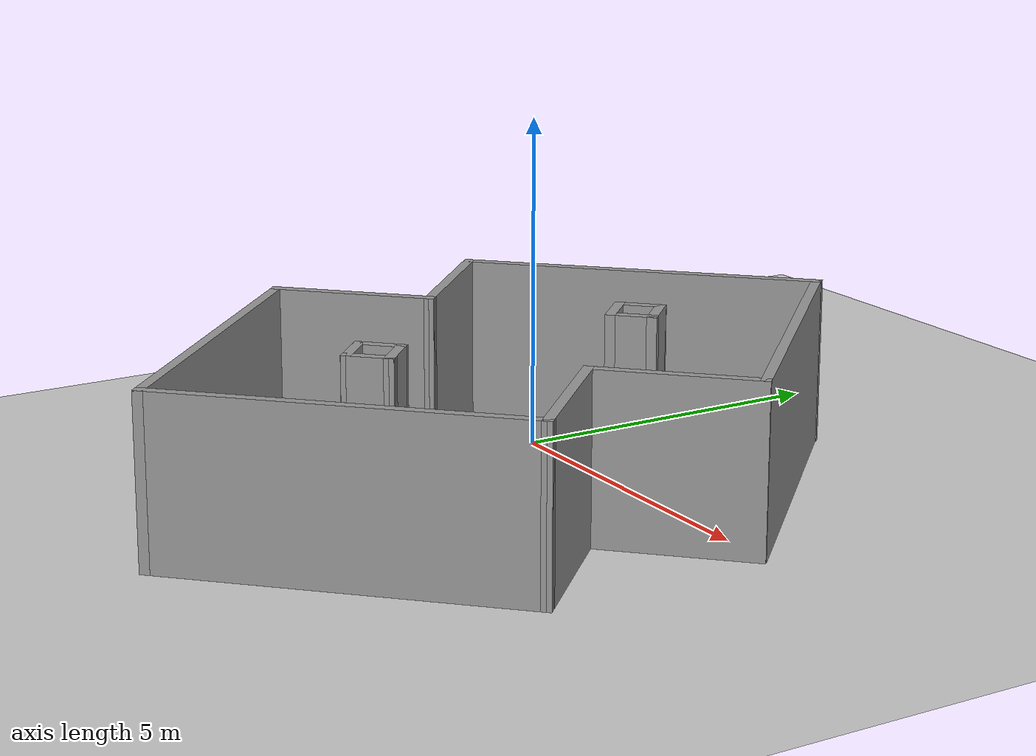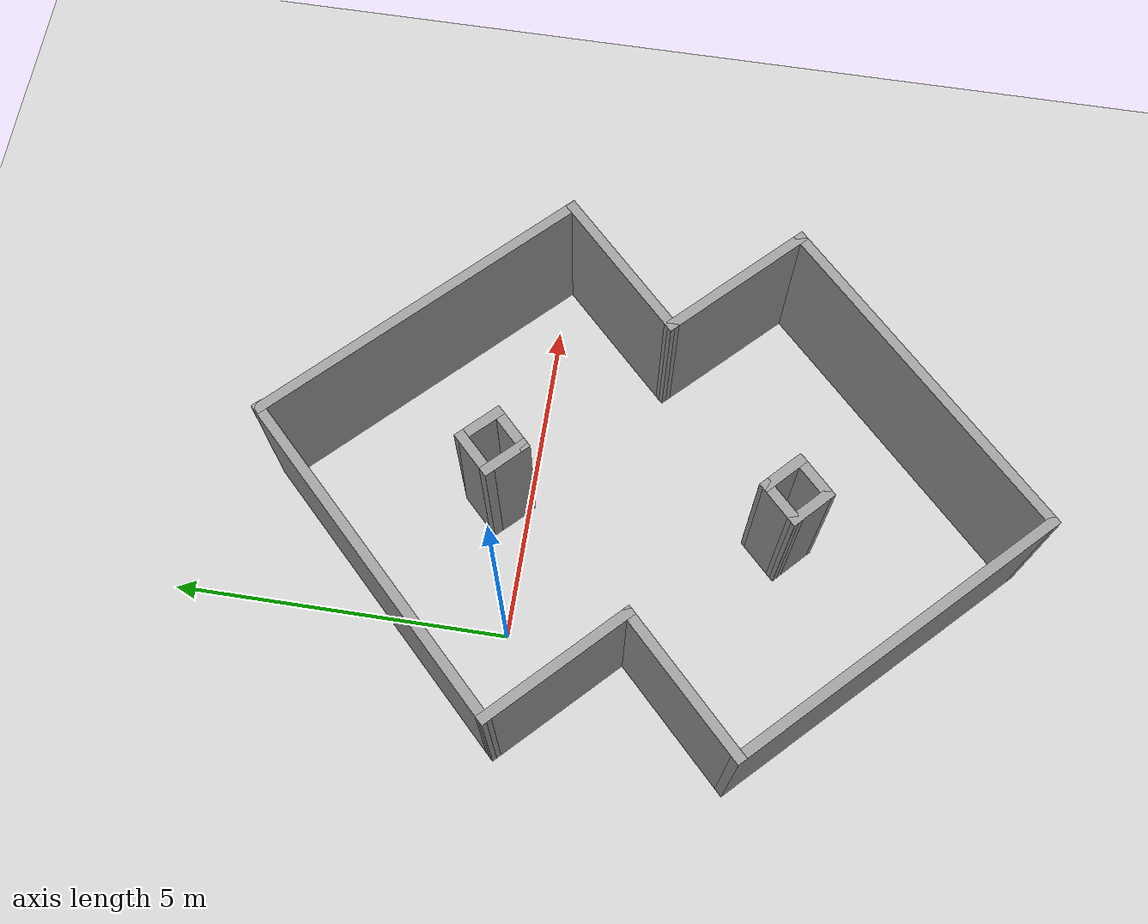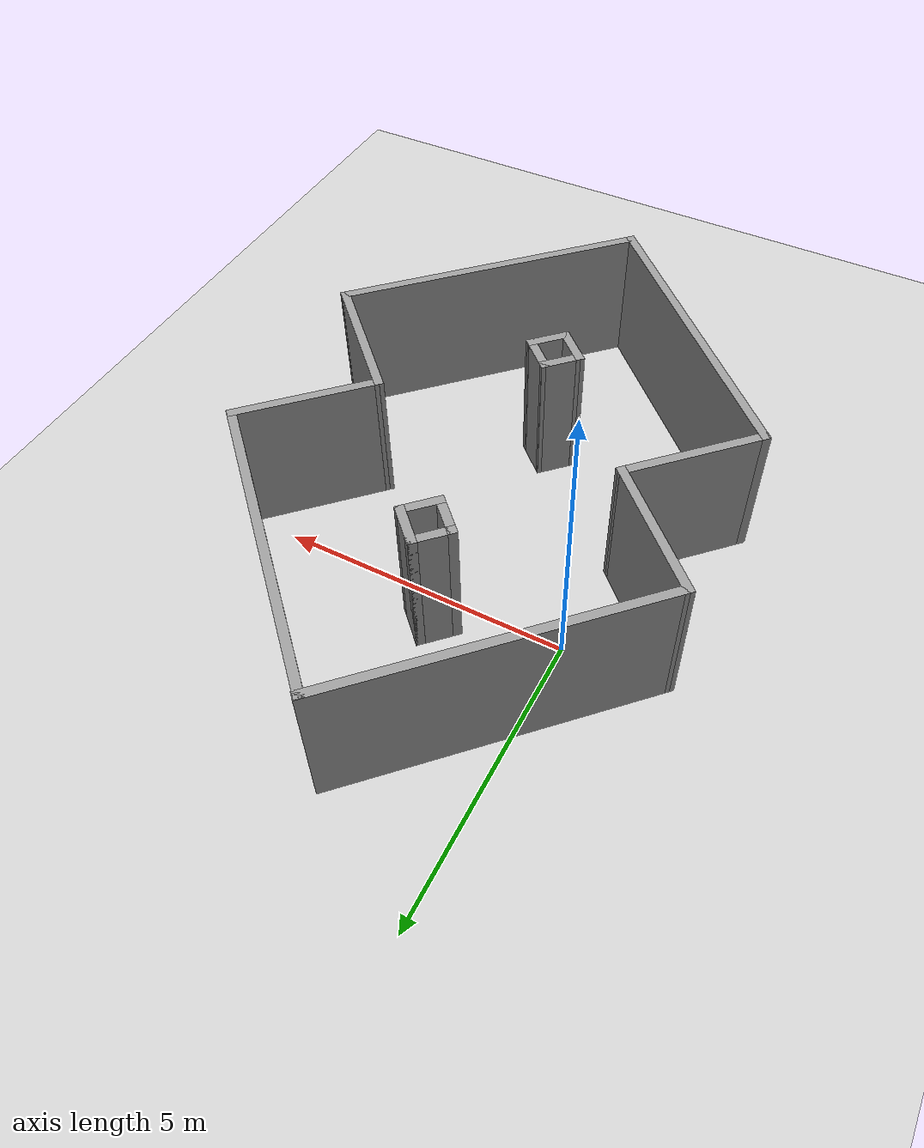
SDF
<sdf version="1.6">
 <world name="default">
  <light name="sun" type="directional">
   <pose>0 0 10 0 -0 0</pose>
   <diffuse>0.8 0.8 0.8 1</diffuse>
   <specular>0.1 0.1 0.1 1</specular>
   <attenuation>
    <range>1000</range>
    <constant>0.9</constant>
    <linear>0.01</linear>
    <quadratic>0.001</quadratic>
   </attenuation>
   <direction>-0.5 0.5 -1</direction>
  </light>
  <model name="ground_plane">
   <static>1</static>
   <link name="link">
    <collision name="collision">
     <geometry><plane><normal>0 0 1</normal><size>100 100</size></plane></geometry>
     <surface><friction><ode><mu>100</mu><mu2>50</mu2></ode></friction></surface>
    </collision>
    <visual name="visual">
     <cast_shadows>0</cast_shadows>
     <geometry><plane><normal>0 0 1</normal><size>100 100</size></plane></geometry>
     <material>
      <script><uri>file://media/materials/scripts/gazebo.material</uri><name>Gazebo/Grey</name></script>
     </material>
    </visual>
   </link>
  </model>
  <gravity>0 0 -9.8</gravity>
  <magnetic_field>6e-06 2.3e-05 -4.2e-05</magnetic_field>
  <atmosphere type="adiabatic"/>
  <physics name="default_physics" default="0" type="ode">
   <max_step_size>0.001</max_step_size>
   <real_time_factor>1</real_time_factor>
   <real_time_update_rate>1000</real_time_update_rate>
  </physics>
  <scene><ambient>0.4 0.4 0.4 1</ambient><background>0.7 0.7 0.7 1</background><shadows>1</shadows></scene>
  <spherical_coordinates>
   <surface_model>EARTH_WGS84</surface_model>
   <latitude_deg>0</latitude_deg>
   <longitude_deg>0</longitude_deg>
   <elevation>0</elevation>
   <heading_deg>0</heading_deg>
  </spherical_coordinates>
  <model name="figure_8">
   <pose>2.05607 -1.73171 0 0 -0 0</pose>
   <link name="Wall_0">
    <collision name="Wall_0_Collision">
     <geometry><box><size>5.52465 0.15 2.5</size></box></geometry>
     <pose>0 0 1.25 0 -0 0</pose>
    </collision>
    <visual name="Wall_0_Visual">
     <pose>0 0 1.25 0 -0 0</pose>
     <geometry><box><size>5.52465 0.15 2.5</size></box></geometry>
     <material>
      <script><uri>file://media/materials/scripts/gazebo.material</uri><name>Gazebo/Grey</name></script>
      <ambient>1 1 1 1</ambient>
     </material>
    </visual>
    <pose>-1.89151 3.53582 0 0 0 -2.35162</pose>
   </link>
   <link name="Wall_2">
    <collision name="Wall_2_Collision">
     <geometry><box><size>2.47553 0.15 2.5</size></box></geometry>
     <pose>0 0 1.25 0 -0 0</pose>
    </collision>
    <visual name="Wall_2_Visual">
     <pose>0 0 1.25 0 -0 0</pose>
     <geometry><box><size>2.47553 0.15 2.5</size></box></geometry>
     <material>
      <script><uri>file://media/materials/scripts/gazebo.material</uri><name>Gazebo/Grey</name></script>
      <ambient>1 1 1 1</ambient>
     </material>
    </visual>
    <pose>-2.95217 0.81346 0 0 0 -0.774822</pose>
   </link>
   <link name="Wall_25">
    <collision name="Wall_25_Collision">
     <geometry><box><size>2.5 0.15 2.5</size></box></geometry>
     <pose>0 0 1.25 0 -0 0</pose>
    </collision>
    <visual name="Wall_25_Visual">
     <pose>0 0 1.25 0 -0 0</pose>
     <geometry><box><size>2.5 0.15 2.5</size></box></geometry>
     <material>
      <script><uri>file://media/materials/scripts/gazebo.material</uri><name>Gazebo/Grey</name></script>
      <ambient>1 1 1 1</ambient>
     </material>
    </visual>
    <pose>-2.95217 -0.83085 0 0 0 -2.35619</pose>
   </link>
   <link name="Wall_27">
    <collision name="Wall_27_Collision">
     <geometry><box><size>5.5 0.15 2.5</size></box></geometry>
     <pose>0 0 1.25 0 -0 0</pose>
    </collision>
    <visual name="Wall_27_Visual">
     <pose>0 0 1.25 0 -0 0</pose>
     <geometry><box><size>5.5 0.15 2.5</size></box></geometry>
     <material>
      <script><uri>file://media/materials/scripts/gazebo.material</uri><name>Gazebo/Grey</name></script>
      <ambient>1 1 1 1</ambient>
     </material>
    </visual>
    <pose>-1.89151 -3.55321 0 0 0 -0.785398</pose>
   </link>
   <link name="Wall_31">
    <collision name="Wall_31_Collision">
     <geometry><box><size>5.5 0.15 2.5</size></box></geometry>
     <pose>0 0 1.25 0 -0 0</pose>
    </collision>
    <visual name="Wall_31_Visual">
     <pose>0 0 1.25 0 -0 0</pose>
     <geometry><box><size>5.5 0.15 2.5</size></box></geometry>
     <material>
      <script><uri>file://media/materials/scripts/gazebo.material</uri><name>Gazebo/Grey</name></script>
      <ambient>1 1 1 1</ambient>
     </material>
    </visual>
    <pose>1.89151 -3.55321 0 0 -0 0.785398</pose>
   </link>
   <link name="Wall_32">
    <collision name="Wall_32_Collision">
     <geometry><box><size>2.49474 0.15 2.5</size></box></geometry>
     <pose>0 0 1.25 0 -0 0</pose>
    </collision>
    <visual name="Wall_32_Visual">
     <pose>0 0 1.25 0 -0 0</pose>
     <geometry><box><size>2.49474 0.15 2.5</size></box></geometry>
     <material>
      <script><uri>file://media/materials/scripts/gazebo.material</uri><name>Gazebo/Grey</name></script>
      <ambient>1 1 1 1</ambient>
     </material>
    </visual>
    <pose>2.95217 -0.834574 0 0 -0 2.35844</pose>
   </link>
   <link name="Wall_34">
    <collision name="Wall_34_Collision">
     <geometry><box><size>0.75 0.15 2.5</size></box></geometry>
     <pose>0 0 1.25 0 -0 0</pose>
    </collision>
    <visual name="Wall_34_Visual">
     <pose>0 0 1.25 0 -0 0</pose>
     <geometry><box><size>0.75 0.15 2.5</size></box></geometry>
     <material>
      <script><uri>file://media/materials/scripts/gazebo.material</uri><name>Gazebo/Grey</name></script>
      <ambient>1 1 1 1</ambient>
     </material>
    </visual>
    <pose>-0.212198 1.96825 0 0 -0 2.35619</pose>
   </link>
   <link name="Wall_35">
    <collision name="Wall_35_Collision">
     <geometry><box><size>0.75 0.15 2.5</size></box></geometry>
     <pose>0 0 1.25 0 -0 0</pose>
    </collision>
    <visual name="Wall_35_Visual">
     <pose>0 0 1.25 0 -0 0</pose>
     <geometry><box><size>0.75 0.15 2.5</size></box></geometry>
     <material>
      <script><uri>file://media/materials/scripts/gazebo.material</uri><name>Gazebo/Grey</name></script>
      <ambient>1 1 1 1</ambient>
     </material>
    </visual>
    <pose>-0.212198 2.39251 0 0 -0 0.785398</pose>
   </link>
   <link name="Wall_36">
    <collision name="Wall_36_Collision">
     <geometry><box><size>0.75 0.15 2.5</size></box></geometry>
     <pose>0 0 1.25 0 -0 0</pose>
    </collision>
    <visual name="Wall_36_Visual">
     <pose>0 0 1.25 0 -0 0</pose>
     <geometry><box><size>0.75 0.15 2.5</size></box></geometry>
     <material>
      <script><uri>file://media/materials/scripts/gazebo.material</uri><name>Gazebo/Grey</name></script>
      <ambient>1 1 1 1</ambient>
     </material>
    </visual>
    <pose>0.212066 2.39251 0 0 0 -0.785398</pose>
   </link>
   <link name="Wall_37">
    <collision name="Wall_37_Collision">
     <geometry><box><size>0.75 0.15 2.5</size></box></geometry>
     <pose>0 0 1.25 0 -0 0</pose>
    </collision>
    <visual name="Wall_37_Visual">
     <pose>0 0 1.25 0 -0 0</pose>
     <geometry><box><size>0.75 0.15 2.5</size></box></geometry>
     <material>
      <script><uri>file://media/materials/scripts/gazebo.material</uri><name>Gazebo/Grey</name></script>
      <ambient>1 1 1 1</ambient>
     </material>
    </visual>
    <pose>0.212066 1.96825 0 0 0 -2.35619</pose>
   </link>
   <link name="Wall_39">
    <collision name="Wall_39_Collision">
     <geometry><box><size>0.75 0.15 2.5</size></box></geometry>
     <pose>0 0 1.25 0 -0 0</pose>
    </collision>
    <visual name="Wall_39_Visual">
     <pose>0 0 1.25 0 -0 0</pose>
     <geometry><box><size>0.75 0.15 2.5</size></box></geometry>
     <material>
      <script><uri>file://media/materials/scripts/gazebo.material</uri><name>Gazebo/Grey</name></script>
      <ambient>1 1 1 1</ambient>
     </material>
    </visual>
    <pose>-0.281198 -1.81401 0 0 0 -2.35619</pose>
   </link>
   <link name="Wall_40">
    <collision name="Wall_40_Collision">
     <geometry><box><size>0.733963 0.15 2.5</size></box></geometry>
     <pose>0 0 1.25 0 -0 0</pose>
    </collision>
    <visual name="Wall_40_Visual">
     <pose>0 0 1.25 0 -0 0</pose>
     <geometry><box><size>0.733963 0.15 2.5</size></box></geometry>
     <material>
      <script><uri>file://media/materials/scripts/gazebo.material</uri><name>Gazebo/Grey</name></script>
      <ambient>1 1 1 1</ambient>
     </material>
    </visual>
    <pose>-0.281198 -2.22678 0 0 0 -0.757544</pose>
   </link>
   <link name="Wall_41">
    <collision name="Wall_41_Collision">
     <geometry><box><size>0.75 0.15 2.5</size></box></geometry>
     <pose>0 0 1.25 0 -0 0</pose>
    </collision>
    <visual name="Wall_41_Visual">
     <pose>0 0 1.25 0 -0 0</pose>
     <geometry><box><size>0.75 0.15 2.5</size></box></geometry>
     <material>
      <script><uri>file://media/materials/scripts/gazebo.material</uri><name>Gazebo/Grey</name></script>
      <ambient>1 1 1 1</ambient>
     </material>
    </visual>
    <pose>0.143066 -2.21528 0 0 -0 0.785398</pose>
   </link>
   <link name="Wall_42">
    <collision name="Wall_42_Collision">
     <geometry><box><size>0.733963 0.15 2.5</size></box></geometry>
     <pose>0 0 1.25 0 -0 0</pose>
    </collision>
    <visual name="Wall_42_Visual">
     <pose>0 0 1.25 0 -0 0</pose>
     <geometry><box><size>0.733963 0.15 2.5</size></box></geometry>
     <material>
      <script><uri>file://media/materials/scripts/gazebo.material</uri><name>Gazebo/Grey</name></script>
      <ambient>1 1 1 1</ambient>
     </material>
    </visual>
    <pose>0.143066 -1.80252 0 0 -0 2.38405</pose>
   </link>
   <link name="Wall_7">
    <collision name="Wall_7_Collision">
     <geometry><box><size>2.5 0.15 2.5</size></box></geometry>
     <pose>0 0 1.25 0 -0 0</pose>
    </collision>
    <visual name="Wall_7_Visual">
     <pose>0 0 1.25 0 -0 0</pose>
     <geometry><box><size>2.5 0.15 2.5</size></box></geometry>
     <material>
      <script><uri>file://media/materials/scripts/gazebo.material</uri><name>Gazebo/Grey</name></script>
      <ambient>1 1 1 1</ambient>
     </material>
    </visual>
    <pose>2.95217 0.823404 0 0 -0 0.785398</pose>
   </link>
   <link name="Wall_8">
    <collision name="Wall_8_Collision">
     <geometry><box><size>5.48596 0.15 2.5</size></box></geometry>
     <pose>0 0 1.25 0 -0 0</pose>
    </collision>
    <visual name="Wall_8_Visual">
     <pose>0 0 1.25 0 -0 0</pose>
     <geometry><box><size>5.48596 0.15 2.5</size></box></geometry>
     <material>
      <script><uri>file://media/materials/scripts/gazebo.material</uri><name>Gazebo/Grey</name></script>
      <ambient>1 1 1 1</ambient>
     </material>
    </visual>
    <pose>1.89151 3.54576 0 0 -0 2.35883</pose>
   </link>
   <static>1</static>
  </model>
 </world>
</sdf>
